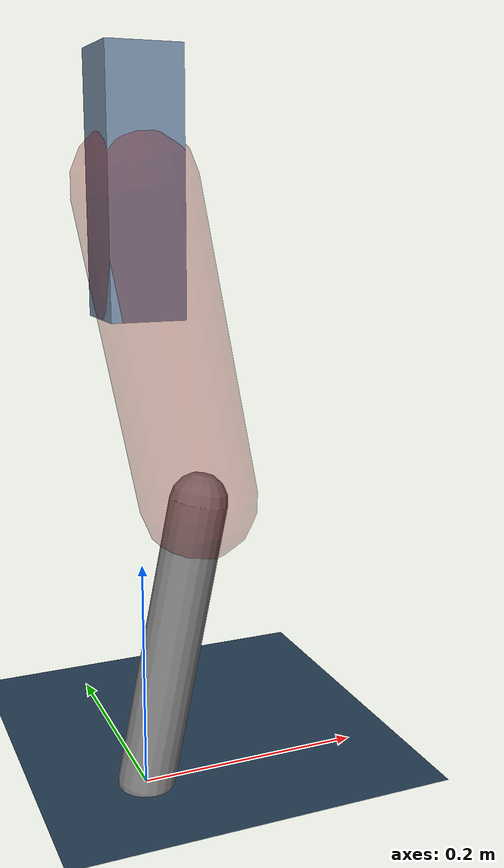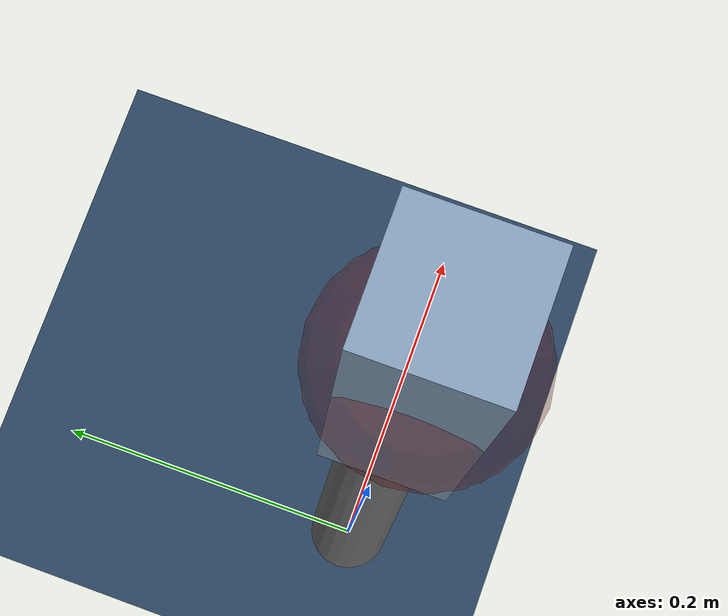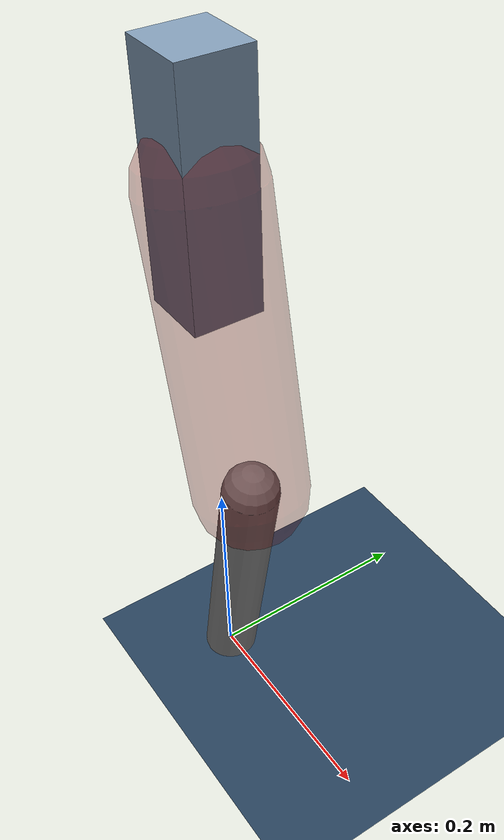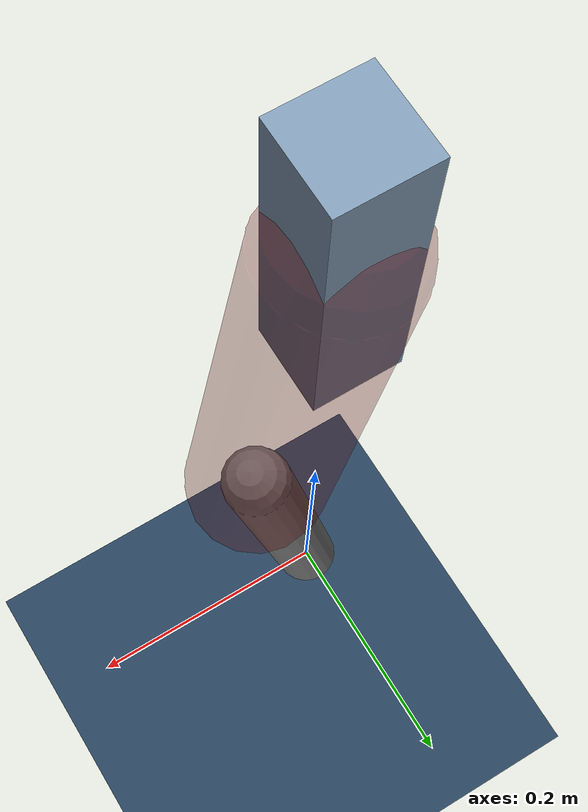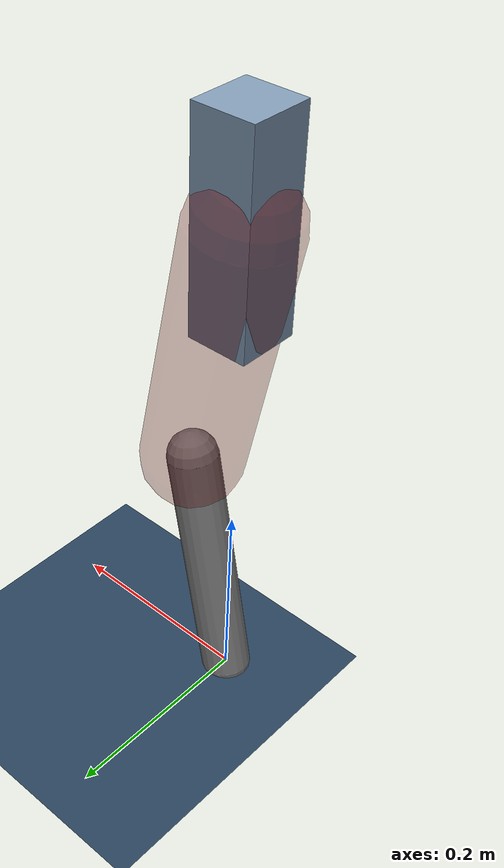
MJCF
<mujoco model="Hopper2D">
	<compiler inertiafromgeom="true" angle="radian" />
	<option timestep="0.001" integrator="implicit" cone="elliptic" solver="Newton" tolerance="1e-10" />

	<default>
		<geom contype="1" conaffinity="1" condim="3" friction="2 0.005 0.0001" solref="0.005 1" />
		<joint limited="true" damping="0.1" />
	</default>

	<asset>
		<texture name="skybox" type="skybox" builtin="gradient" rgb1=".4 .6 .8" rgb2="0 0 0" width="800" height="800" />
		<texture name="grid" type="2d" builtin="checker" rgb1=".1 .2 .3" rgb2=".2 .3 .4" width="300" height="300" mark="edge" markrgb=".2 .3 .4" />
		<material name="ground" texture="grid" texrepeat="1 1" texuniform="true" reflectance="0.1" />
		<material name="leg" rgba="0.5 0.6 0.7 1" />
	</asset>

	<worldbody>

		<geom name="floor" type="plane" size="5 5 0.25" material="ground" />

		<light directional="false" diffuse="0.8 0.8 0.8" specular="0.3 0.3 0.3" pos="0 0 2" dir="0 0 -1" />
		<light mode="targetbodycom" target="base" directional="false" diffuse="0.8 0.8 0.8" specular="0.3 0.3 0.3" pos="0 0 2" dir="0 0 -1" />

		<camera name="fixed" pos="0 -2 1" xyaxes="1 0 0 0 0 1" />
		<camera name="tracking" mode="trackcom" pos="0 -3 1" />

		<body name="root" pos="0 0 0.506123995559725">
			<joint name="slide_x" type="slide" axis="1 0 0" range="-100 100" />
			<joint name="slide_z" type="slide" axis="0 0 1" range="0 10" />

			<body name="base" pos="0 0 0">
				<geom name="torso" type="box" size="0.03 0.03 0.1" mass="1.976" material="leg" />

				<body name="link1" pos="0 0 0" euler="0 1.3755254711446203 0">
					<joint type="hinge" axis="0 -1 0" pos="0 0 0" name="hinge1" limited="true" range="-3.14 3.14" stiffness="0" damping="0.1" />
					<geom name="thigh" type="capsule" fromto="0 0 0 0.26052751929180185 0 0" size="0.05" rgba="0.5 0 0 0.3" mass="0.8837715501586848" />

					<body name="link2" pos="0.26052751929180185 0 0" euler="0 0.3943590089711072 0">
						<joint type="hinge" axis="0 -1 0" pos="0 0 0" name="hinge2" limited="true" range="-3.14 3.14" stiffness="0" damping="0.1" />
						<geom name="shank" type="capsule" fromto="0 0 0 0.25559647626792315 0 0" size="0.025" mass="0.44713682864113086" />

					</body>
				</body>
			</body>
		</body>
	</worldbody>

	<actuator>
		<motor name="torque1" joint="hinge1" ctrlrange="-78.30103626485727 78.30103626485727" ctrllimited="true" gear="1" />
		<motor name="torque2" joint="hinge2" ctrlrange="-70.10256091905345 70.10256091905345" ctrllimited="true" gear="1" />
	</actuator>
</mujoco>
